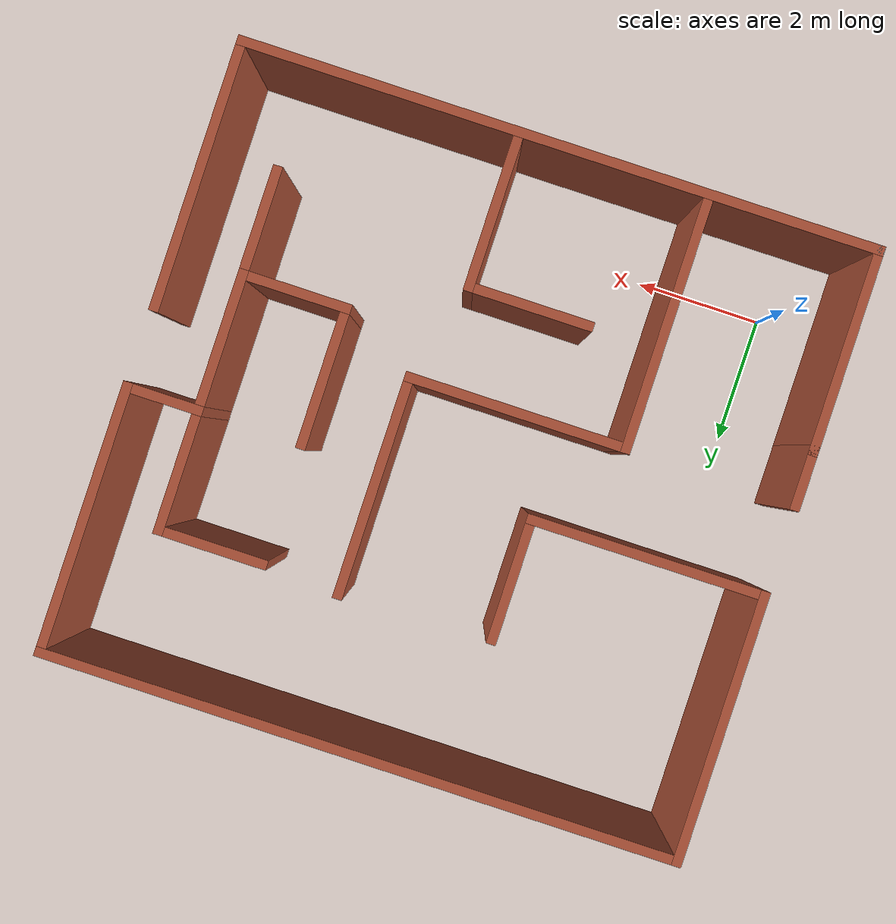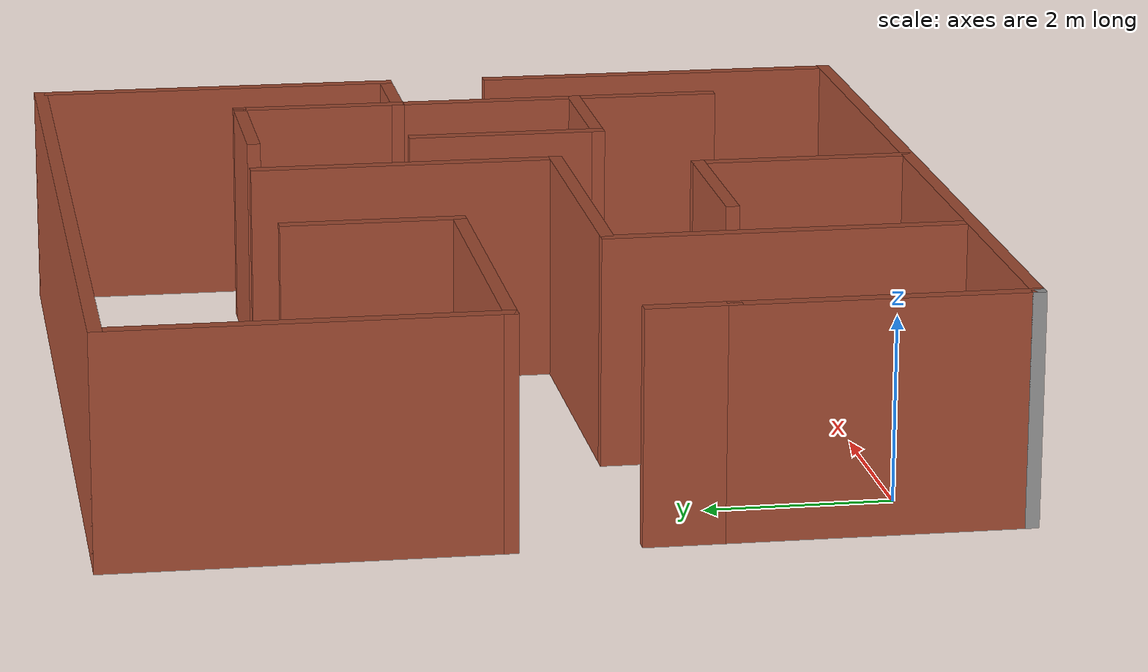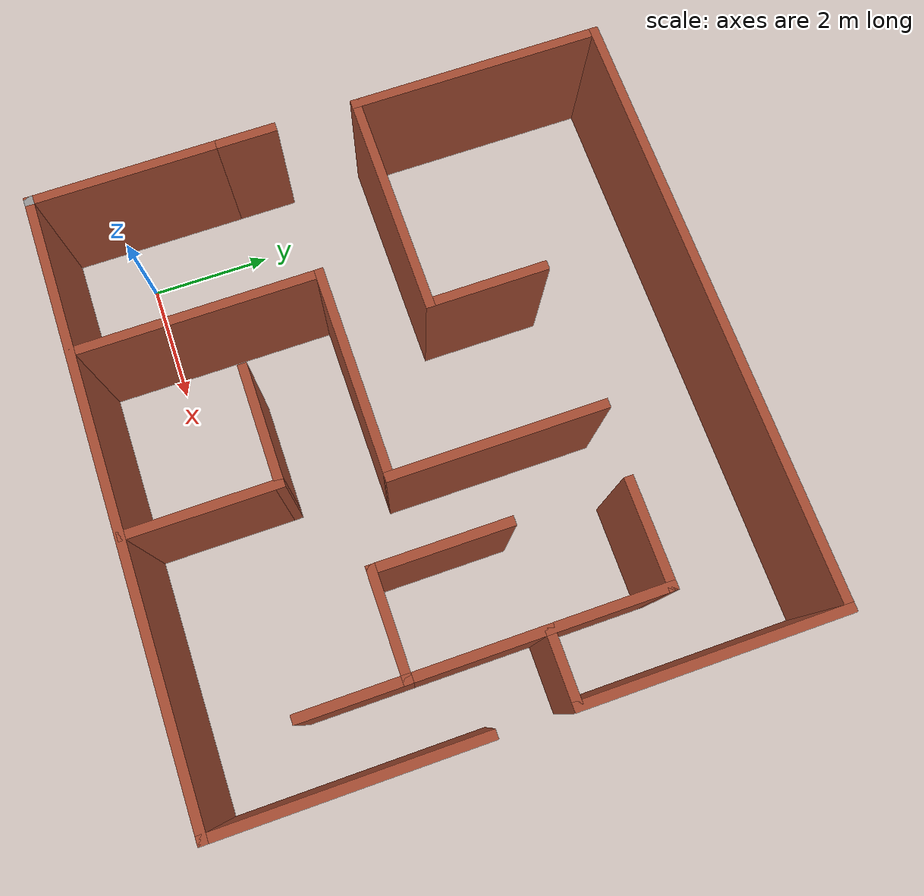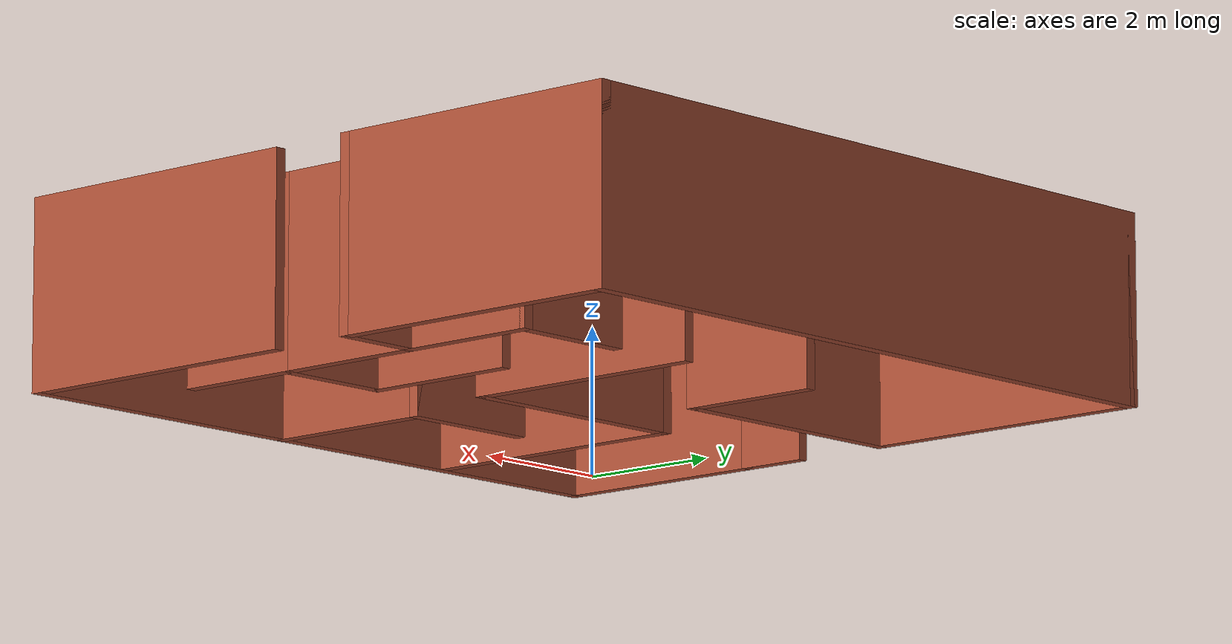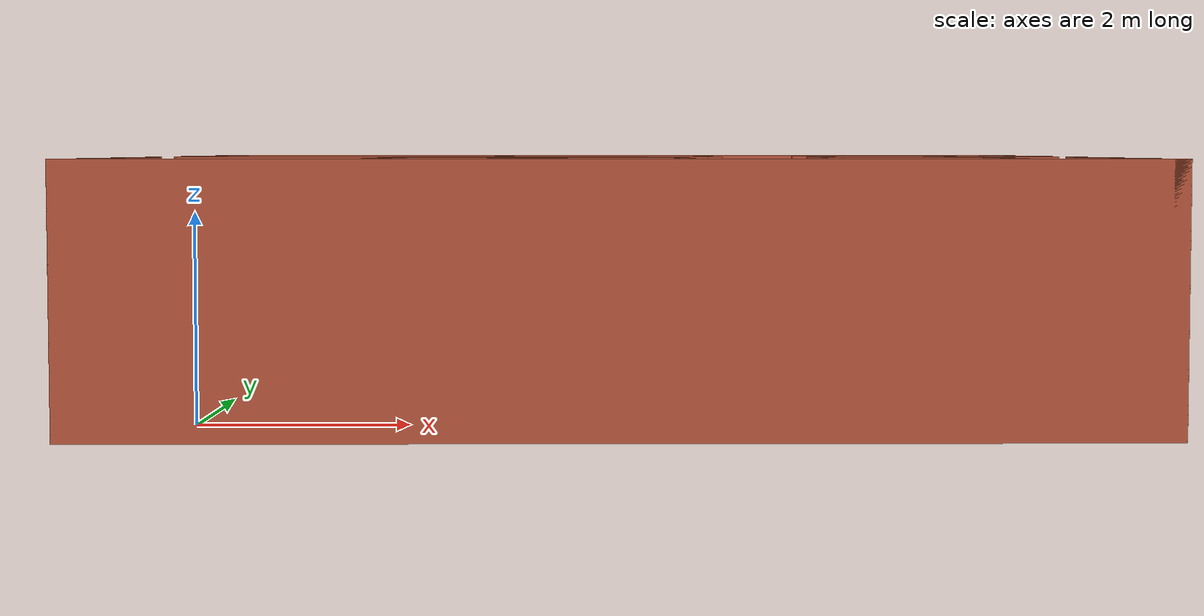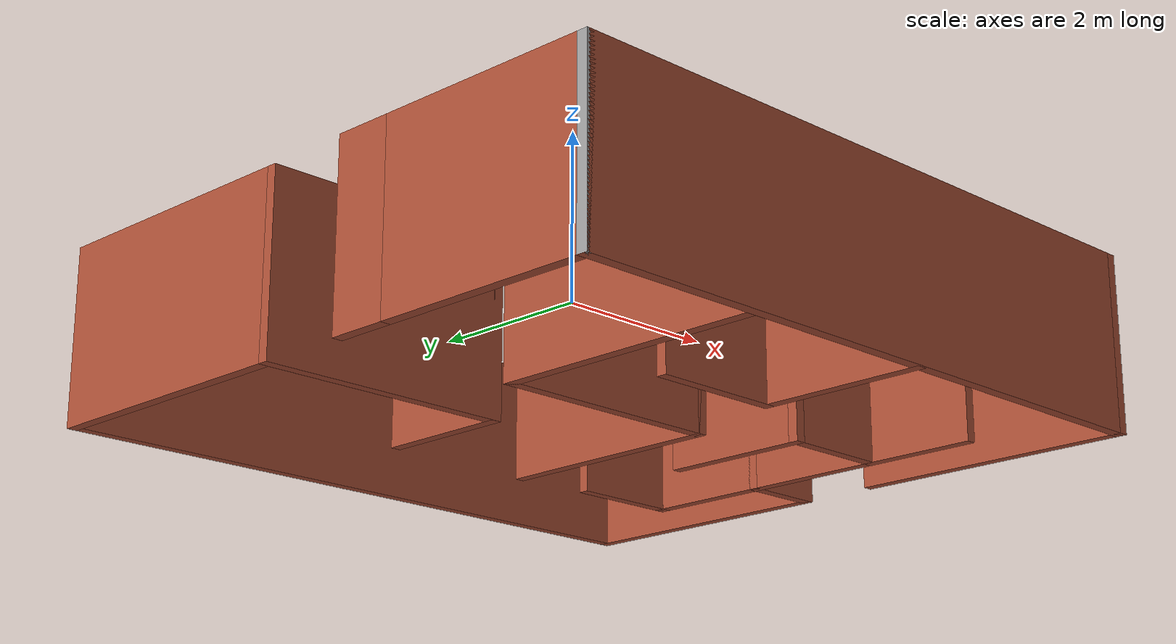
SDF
<?xml version='1.0'?>
<sdf version='1.6'>
  <model name='Rover_Maze'>
    <pose frame=''>3.96567 3.52524 0 0 -0 0</pose>
    <link name='Wall_0'>
      <collision name='Wall_0_Collision'>
        <geometry>
          <box>
            <size>10 0.15 2.5</size>
          </box>
        </geometry>
        <pose frame=''>0 0 1.25 0 -0 0</pose>
      </collision>
      <visual name='Wall_0_Visual'>
        <pose frame=''>0 0 1.25 0 -0 0</pose>
        <geometry>
          <box>
            <size>10 0.15 2.5</size>
          </box>
        </geometry>
        <material>
          <script>
            <uri>file://media/materials/scripts/gazebo.material</uri>
            <name>Gazebo/Bricks</name>
          </script>
          <ambient>1 1 1 1</ambient>
        </material>
        <meta>
          <layer>0</layer>
        </meta>
      </visual>
      <pose frame=''>-0.010668 -4.72524 0 0 -0 0</pose>
    </link>
    <link name='Wall_11'>
      <collision name='Wall_11_Collision'>
        <geometry>
          <box>
            <size>2.5 0.15 2.5</size>
          </box>
        </geometry>
        <pose frame=''>0 0 1.25 0 -0 0</pose>
      </collision>
      <visual name='Wall_11_Visual'>
        <pose frame=''>0 0 1.25 0 -0 0</pose>
        <geometry>
          <box>
            <size>2.5 0.15 2.5</size>
          </box>
        </geometry>
        <material>
          <script>
            <uri>file://media/materials/scripts/gazebo.material</uri>
            <name>Gazebo/Bricks</name>
          </script>
          <ambient>1 1 1 1</ambient>
        </material>
        <meta>
          <layer>0</layer>
        </meta>
      </visual>
      <pose frame=''>0.622652 -3.51498 0 0 -0 1.5708</pose>
    </link>
    <link name='Wall_12'>
      <collision name='Wall_12_Collision'>
        <geometry>
          <box>
            <size>2 0.15 2.5</size>
          </box>
        </geometry>
        <pose frame=''>0 0 1.25 0 -0 0</pose>
      </collision>
      <visual name='Wall_12_Visual'>
        <pose frame=''>0 0 1.25 0 -0 0</pose>
        <geometry>
          <box>
            <size>2 0.15 2.5</size>
          </box>
        </geometry>
        <material>
          <script>
            <uri>file://media/materials/scripts/gazebo.material</uri>
            <name>Gazebo/Bricks</name>
          </script>
          <ambient>1 1 1 1</ambient>
        </material>
        <meta>
          <layer>0</layer>
        </meta>
      </visual>
      <pose frame=''>-0.302348 -2.33998 0 0 -0 3.14159</pose>
    </link>
    <link name='Wall_14'>
      <collision name='Wall_14_Collision'>
        <geometry>
          <box>
            <size>4.25 0.15 2.5</size>
          </box>
        </geometry>
        <pose frame=''>0 0 1.25 0 -0 0</pose>
      </collision>
      <visual name='Wall_14_Visual'>
        <pose frame=''>0 0 1.25 0 -0 0</pose>
        <geometry>
          <box>
            <size>4.25 0.15 2.5</size>
          </box>
        </geometry>
        <material>
          <script>
            <uri>file://media/materials/scripts/gazebo.material</uri>
            <name>Gazebo/Bricks</name>
          </script>
          <ambient>1 1 1 1</ambient>
        </material>
        <meta>
          <layer>0</layer>
        </meta>
      </visual>
      <pose frame=''>4.91433 -2.67524 0 0 -0 1.5708</pose>
    </link>
    <link name='Wall_16'>
      <collision name='Wall_16_Collision'>
        <geometry>
          <box>
            <size>4.25 0.15 2.5</size>
          </box>
        </geometry>
        <pose frame=''>0 0 1.25 0 -0 0</pose>
      </collision>
      <visual name='Wall_16_Visual'>
        <pose frame=''>0 0 1.25 0 -0 0</pose>
        <geometry>
          <box>
            <size>4.25 0.15 2.5</size>
          </box>
        </geometry>
        <material>
          <script>
            <uri>file://media/materials/scripts/gazebo.material</uri>
            <name>Gazebo/Bricks</name>
          </script>
          <ambient>1 1 1 1</ambient>
        </material>
        <meta>
          <layer>0</layer>
        </meta>
      </visual>
      <pose frame=''>-4.91433 2.67524 0 0 -0 1.5708</pose>
    </link>
    <link name='Wall_17'>
      <collision name='Wall_17_Collision'>
        <geometry>
          <box>
            <size>10 0.15 2.5</size>
          </box>
        </geometry>
        <pose frame=''>0 0 1.25 0 -0 0</pose>
      </collision>
      <visual name='Wall_17_Visual'>
        <pose frame=''>0 0 1.25 0 -0 0</pose>
        <geometry>
          <box>
            <size>10 0.15 2.5</size>
          </box>
        </geometry>
        <material>
          <script>
            <uri>file://media/materials/scripts/gazebo.material</uri>
            <name>Gazebo/Bricks</name>
          </script>
          <ambient>1 1 1 1</ambient>
        </material>
        <meta>
          <layer>0</layer>
        </meta>
      </visual>
      <pose frame=''>0.010668 4.72524 0 0 -0 0</pose>
    </link>
    <link name='Wall_18'>
      <collision name='Wall_18_Collision'>
        <geometry>
          <box>
            <size>4.25 0.15 2.5</size>
          </box>
        </geometry>
        <pose frame=''>0 0 1.25 0 -0 0</pose>
      </collision>
      <visual name='Wall_18_Visual'>
        <pose frame=''>0 0 1.25 0 -0 0</pose>
        <geometry>
          <box>
            <size>4.25 0.15 2.5</size>
          </box>
        </geometry>
        <material>
          <script>
            <uri>file://media/materials/scripts/gazebo.material</uri>
            <name>Gazebo/Bricks</name>
          </script>
          <ambient>1 1 1 1</ambient>
        </material>
        <meta>
          <layer>0</layer>
        </meta>
      </visual>
      <pose frame=''>4.93567 2.67524 0 0 -0 -1.5708</pose>
    </link>
    <link name='Wall_19'>
      <collision name='Wall_19_Collision'>
        <geometry>
          <box>
            <size>1.25 0.15 2.5</size>
          </box>
        </geometry>
        <pose frame=''>0 0 1.25 0 -0 0</pose>
      </collision>
      <visual name='Wall_19_Visual'>
        <pose frame=''>0 0 1.25 0 -0 0</pose>
        <geometry>
          <box>
            <size>1.25 0.15 2.5</size>
          </box>
        </geometry>
        <material>
          <script>
            <uri>file://media/materials/scripts/gazebo.material</uri>
            <name>Gazebo/Bricks</name>
          </script>
          <ambient>1 1 1 1</ambient>
        </material>
        <meta>
          <layer>0</layer>
        </meta>
      </visual>
      <pose frame=''>4.38567 0.625239 0 0 -0 3.14159</pose>
    </link>
    <link name='Wall_2'>
      <collision name='Wall_2_Collision'>
        <geometry>
          <box>
            <size>0.15 0.15 2.5</size>
          </box>
        </geometry>
        <pose frame=''>0 0 1.25 0 -0 0</pose>
      </collision>
      <visual name='Wall_2_Visual'>
        <pose frame=''>0 0 1.25 0 -0 0</pose>
        <geometry>
          <box>
            <size>0.15 0.15 2.5</size>
          </box>
        </geometry>
        <material>
          <script>
            <uri>file://media/materials/scripts/gazebo.material</uri>
            <name>Gazebo/Grey</name>
          </script>
          <ambient>1 1 1 1</ambient>
        </material>
        <meta>
          <layer>0</layer>
        </meta>
      </visual>
      <pose frame=''>-4.93567 -4.72524 0 0 -0 0</pose>
    </link>
    <link name='Wall_20'>
      <collision name='Wall_20_Collision'>
        <geometry>
          <box>
            <size>2 0.15 2.5</size>
          </box>
        </geometry>
        <pose frame=''>0 0 1.25 0 -0 0</pose>
      </collision>
      <visual name='Wall_20_Visual'>
        <pose frame=''>0 0 1.25 0 -0 0</pose>
        <geometry>
          <box>
            <size>2 0.15 2.5</size>
          </box>
        </geometry>
        <material>
          <script>
            <uri>file://media/materials/scripts/gazebo.material</uri>
            <name>Gazebo/Bricks</name>
          </script>
          <ambient>1 1 1 1</ambient>
        </material>
        <meta>
          <layer>0</layer>
        </meta>
      </visual>
      <pose frame=''>3.83567 1.55024 0 0 -0 1.5708</pose>
    </link>
    <link name='Wall_21'>
      <collision name='Wall_21_Collision'>
        <geometry>
          <box>
            <size>1.75 0.15 2.5</size>
          </box>
        </geometry>
        <pose frame=''>0 0 1.25 0 -0 0</pose>
      </collision>
      <visual name='Wall_21_Visual'>
        <pose frame=''>0 0 1.25 0 -0 0</pose>
        <geometry>
          <box>
            <size>1.75 0.15 2.5</size>
          </box>
        </geometry>
        <material>
          <script>
            <uri>file://media/materials/scripts/gazebo.material</uri>
            <name>Gazebo/Bricks</name>
          </script>
          <ambient>1 1 1 1</ambient>
        </material>
        <meta>
          <layer>0</layer>
        </meta>
      </visual>
      <pose frame=''>3.03567 2.47524 0 0 -0 3.14159</pose>
    </link>
    <link name='Wall_23'>
      <collision name='Wall_23_Collision'>
        <geometry>
          <box>
            <size>2.25 0.15 2.5</size>
          </box>
        </geometry>
        <pose frame=''>0 0 1.25 0 -0 0</pose>
      </collision>
      <visual name='Wall_23_Visual'>
        <pose frame=''>0 0 1.25 0 -0 0</pose>
        <geometry>
          <box>
            <size>2.25 0.15 2.5</size>
          </box>
        </geometry>
        <material>
          <script>
            <uri>file://media/materials/scripts/gazebo.material</uri>
            <name>Gazebo/Bricks</name>
          </script>
          <ambient>1 1 1 1</ambient>
        </material>
        <meta>
          <layer>0</layer>
        </meta>
      </visual>
      <pose frame=''>3.83567 -0.424761 0 0 -0 -1.5708</pose>
    </link>
    <link name='Wall_24'>
      <collision name='Wall_24_Collision'>
        <geometry>
          <box>
            <size>1.75 0.15 2.5</size>
          </box>
        </geometry>
        <pose frame=''>0 0 1.25 0 -0 0</pose>
      </collision>
      <visual name='Wall_24_Visual'>
        <pose frame=''>0 0 1.25 0 -0 0</pose>
        <geometry>
          <box>
            <size>1.75 0.15 2.5</size>
          </box>
        </geometry>
        <material>
          <script>
            <uri>file://media/materials/scripts/gazebo.material</uri>
            <name>Gazebo/Bricks</name>
          </script>
          <ambient>1 1 1 1</ambient>
        </material>
        <meta>
          <layer>0</layer>
        </meta>
      </visual>
      <pose frame=''>3.03567 -1.47476 0 0 -0 3.14159</pose>
    </link>
    <link name='Wall_25'>
      <collision name='Wall_25_Collision'>
        <geometry>
          <box>
            <size>2.25 0.15 2.5</size>
          </box>
        </geometry>
        <pose frame=''>0 0 1.25 0 -0 0</pose>
      </collision>
      <visual name='Wall_25_Visual'>
        <pose frame=''>0 0 1.25 0 -0 0</pose>
        <geometry>
          <box>
            <size>2.25 0.15 2.5</size>
          </box>
        </geometry>
        <material>
          <script>
            <uri>file://media/materials/scripts/gazebo.material</uri>
            <name>Gazebo/Bricks</name>
          </script>
          <ambient>1 1 1 1</ambient>
        </material>
        <meta>
          <layer>0</layer>
        </meta>
      </visual>
      <pose frame=''>2.23567 -0.424761 0 0 -0 1.5708</pose>
    </link>
    <link name='Wall_27'>
      <collision name='Wall_27_Collision'>
        <geometry>
          <box>
            <size>1.75 0.15 2.5</size>
          </box>
        </geometry>
        <pose frame=''>0 0 1.25 0 -0 0</pose>
      </collision>
      <visual name='Wall_27_Visual'>
        <pose frame=''>0 0 1.25 0 -0 0</pose>
        <geometry>
          <box>
            <size>1.75 0.15 2.5</size>
          </box>
        </geometry>
        <material>
          <script>
            <uri>file://media/materials/scripts/gazebo.material</uri>
            <name>Gazebo/Bricks</name>
          </script>
          <ambient>1 1 1 1</ambient>
        </material>
        <meta>
          <layer>0</layer>
        </meta>
      </visual>
      <pose frame=''>3.83567 -2.27476 0 0 -0 -1.5708</pose>
    </link>
    <link name='Wall_29'>
      <collision name='Wall_29_Collision'>
        <geometry>
          <box>
            <size>3.75 0.15 2.5</size>
          </box>
        </geometry>
        <pose frame=''>0 0 1.25 0 -0 0</pose>
      </collision>
      <visual name='Wall_29_Visual'>
        <pose frame=''>0 0 1.25 0 -0 0</pose>
        <geometry>
          <box>
            <size>3.75 0.15 2.5</size>
          </box>
        </geometry>
        <material>
          <script>
            <uri>file://media/materials/scripts/gazebo.material</uri>
            <name>Gazebo/Bricks</name>
          </script>
          <ambient>1 1 1 1</ambient>
        </material>
        <meta>
          <layer>0</layer>
        </meta>
      </visual>
      <pose frame=''>-3.11433 0.625239 0 0 -0 0</pose>
    </link>
    <link name='Wall_3'>
      <collision name='Wall_3_Collision'>
        <geometry>
          <box>
            <size>3.25 0.15 2.5</size>
          </box>
        </geometry>
        <pose frame=''>0 0 1.25 0 -0 0</pose>
      </collision>
      <visual name='Wall_3_Visual'>
        <pose frame=''>0 0 1.25 0 -0 0</pose>
        <geometry>
          <box>
            <size>3.25 0.15 2.5</size>
          </box>
        </geometry>
        <material>
          <script>
            <uri>file://media/materials/scripts/gazebo.material</uri>
            <name>Gazebo/Bricks</name>
          </script>
          <ambient>1 1 1 1</ambient>
        </material>
        <meta>
          <layer>0</layer>
        </meta>
      </visual>
      <pose frame=''>-4.93567 -3.17524 0 0 -0 1.5708</pose>
    </link>
    <link name='Wall_30'>
      <collision name='Wall_30_Collision'>
        <geometry>
          <box>
            <size>2 0.15 2.5</size>
          </box>
        </geometry>
        <pose frame=''>0 0 1.25 0 -0 0</pose>
      </collision>
      <visual name='Wall_30_Visual'>
        <pose frame=''>0 0 1.25 0 -0 0</pose>
        <geometry>
          <box>
            <size>2 0.15 2.5</size>
          </box>
        </geometry>
        <material>
          <script>
            <uri>file://media/materials/scripts/gazebo.material</uri>
            <name>Gazebo/Bricks</name>
          </script>
          <ambient>1 1 1 1</ambient>
        </material>
        <meta>
          <layer>0</layer>
        </meta>
      </visual>
      <pose frame=''>-1.31433 1.55024 0 0 -0 1.5708</pose>
    </link>
    <link name='Wall_5'>
      <collision name='Wall_5_Collision'>
        <geometry>
          <box>
            <size>1 0.15 2.5</size>
          </box>
        </geometry>
        <pose frame=''>0 0 1.25 0 -0 0</pose>
      </collision>
      <visual name='Wall_5_Visual'>
        <pose frame=''>0 0 1.25 0 -0 0</pose>
        <geometry>
          <box>
            <size>1 0.15 2.5</size>
          </box>
        </geometry>
        <material>
          <script>
            <uri>file://media/materials/scripts/gazebo.material</uri>
            <name>Gazebo/Bricks</name>
          </script>
          <ambient>1 1 1 1</ambient>
        </material>
        <meta>
          <layer>0</layer>
        </meta>
      </visual>
      <pose frame=''>-4.93567 -1.20024 0 0 -0 1.5708</pose>
    </link>
    <link name='Wall_7'>
      <collision name='Wall_7_Collision'>
        <geometry>
          <box>
            <size>4 0.15 2.5</size>
          </box>
        </geometry>
        <pose frame=''>0 0 1.25 0 -0 0</pose>
      </collision>
      <visual name='Wall_7_Visual'>
        <pose frame=''>0 0 1.25 0 -0 0</pose>
        <geometry>
          <box>
            <size>4 0.15 2.5</size>
          </box>
        </geometry>
        <material>
          <script>
            <uri>file://media/materials/scripts/gazebo.material</uri>
            <name>Gazebo/Bricks</name>
          </script>
          <ambient>1 1 1 1</ambient>
        </material>
        <meta>
          <layer>0</layer>
        </meta>
      </visual>
      <pose frame=''>-2.31199 -2.72598 0 0 -0 1.5708</pose>
    </link>
    <link name='Wall_8'>
      <collision name='Wall_8_Collision'>
        <geometry>
          <box>
            <size>3.5 0.15 2.5</size>
          </box>
        </geometry>
        <pose frame=''>0 0 1.25 0 -0 0</pose>
      </collision>
      <visual name='Wall_8_Visual'>
        <pose frame=''>0 0 1.25 0 -0 0</pose>
        <geometry>
          <box>
            <size>3.5 0.15 2.5</size>
          </box>
        </geometry>
        <material>
          <script>
            <uri>file://media/materials/scripts/gazebo.material</uri>
            <name>Gazebo/Bricks</name>
          </script>
          <ambient>1 1 1 1</ambient>
        </material>
        <meta>
          <layer>0</layer>
        </meta>
      </visual>
      <pose frame=''>-0.636993 -0.800984 0 0 -0 0</pose>
    </link>
    <link name='Wall_9'>
      <collision name='Wall_9_Collision'>
        <geometry>
          <box>
            <size>3.5 0.15 2.5</size>
          </box>
        </geometry>
        <pose frame=''>0 0 1.25 0 -0 0</pose>
      </collision>
      <visual name='Wall_9_Visual'>
        <pose frame=''>0 0 1.25 0 -0 0</pose>
        <geometry>
          <box>
            <size>3.5 0.15 2.5</size>
          </box>
        </geometry>
        <material>
          <script>
            <uri>file://media/materials/scripts/gazebo.material</uri>
            <name>Gazebo/Bricks</name>
          </script>
          <ambient>1 1 1 1</ambient>
        </material>
        <meta>
          <layer>0</layer>
        </meta>
      </visual>
      <pose frame=''>1.03801 0.874016 0 0 -0 1.5708</pose>
    </link>
    <static>1</static>
  </model>
</sdf>
